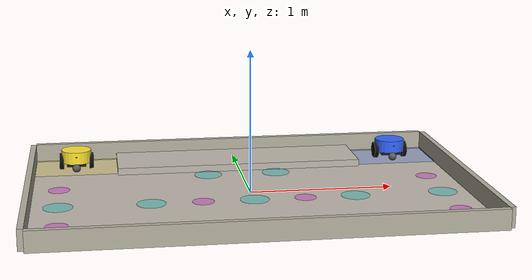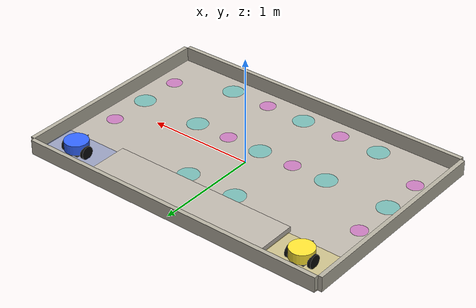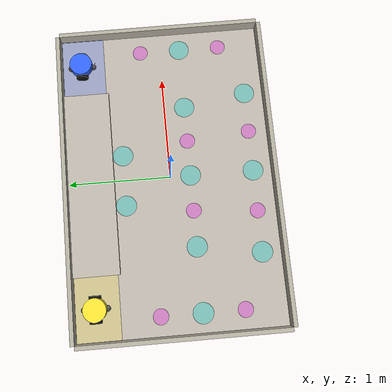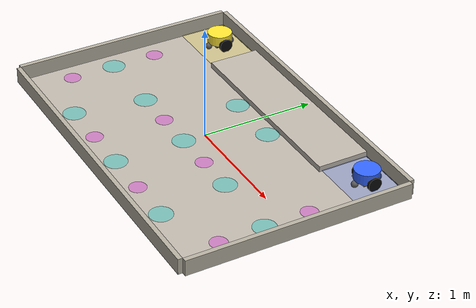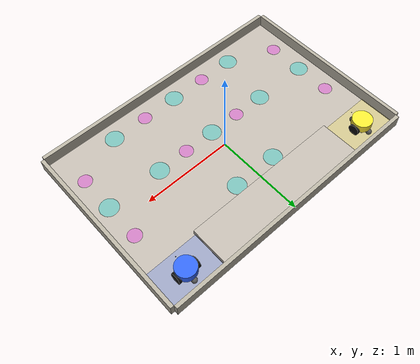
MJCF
<mujoco model="eurobot2026_table">
      <compiler angle="degree" coordinate="local"/>
      <option integrator="RK4" timestep="0.002" gravity="0 0 -9.81" cone="elliptic" jacobian="dense" iterations="80" tolerance="1e-6" impratio="4"/>

      <size nconmax="200" njmax="2000"/>

      <asset>
            <texture name="playmat_tex" type="2d" file="table.png"/>
            <material name="playmat_mat" texture="playmat_tex" rgba="1 1 1 1"/>

            <texture name="granary_tex" type="2d" file="granary_beta.png"/>
            <material name="granary_mat" texture="granary_tex" rgba="1 1 1 1"/>

            <material name="border_mat" rgba="0.71 0.69 0.63 1"/>
            <material name="matblue" rgba="0.2 0.4 1 1"/>
            <material name="matyellow" rgba="1 0.9 0.2 1"/>
      </asset>

      <default>
            <geom friction="1.0 0.01 0.002" solimp="0.9 0.95 0.001" solref="0.004 1"/>
            <joint damping="0.10" armature="0.003"/>
            <velocity kv="20" ctrllimited="true" ctrlrange="-10 10" forcerange="-2 2"/>
      </default>

      <worldbody>
            <light diffuse=".2 .2 .2" pos="0 0 10" dir="0 0 -1"/>

            <!-- Table -->
            <geom name="table_top" type="box" pos="0 0 0" size="1.500 1.000 0.005" priority="2" material="playmat_mat" contype="1" conaffinity="1" friction="1 0.005 0.0001"/>

            <geom name="wall_north" type="box" pos=" 1.520 0.000 0.070" size="0.020 1.000 0.070" material="border_mat" contype="1" conaffinity="1" friction="0.20 0.002 0.00005" solref="0.002 1" solimp="0.95 0.99 0.001"/>
            <geom name="wall_south" type="box" pos="-1.520 0.000 0.070" size="0.020 1.000 0.070" material="border_mat" contype="1" conaffinity="1" friction="0.20 0.002 0.00005" solref="0.002 1" solimp="0.95 0.99 0.001"/>
            <geom name="wall_east" type="box" pos="0.000  1.020 0.070" size="1.500 0.020 0.070" material="border_mat" contype="1" conaffinity="1" friction="0.20 0.002 0.00005" solref="0.002 1" solimp="0.95 0.99 0.001"/>
            <geom name="wall_west" type="box" pos="0.000 -1.020 0.070" size="1.500 0.020 0.070" material="border_mat" contype="1" conaffinity="1" friction="0.20 0.002 0.00005" solref="0.002 1" solimp="0.95 0.99 0.001"/>

            <!-- Granary -->
            <geom name="granary" type="box" pos="0.0 0.775 0.027500" size="0.900000 0.225000 0.027500" material="granary_mat" contype="1" conaffinity="1"/>

            <!-- Blue robot -->
            <body name="blue_base" pos="1.20 0.8 0.12" euler="0 0 -90">
                  <freejoint name="blue_base_free"/>

                  <geom name="blue_chassis" type="cylinder" pos="0 0 -0.02" size="0.11 0.045" density="300" material="matblue" contype="1" conaffinity="1"/>

                  <geom name="blue_ballast" type="box" pos="0 0 -0.08" size="0.07 0.07 0.01" density="2000" rgba="0.1 0.1 0.1 1" contype="0" conaffinity="0"/>

                  <geom name="blue_caster_front" type="sphere" pos="0.11 0 -0.09" size="0.03" rgba="0.35 0.35 0.35 1" friction="0.002 0.00005 0.0001"/>
                  <geom name="blue_caster_back" type="sphere" pos="-0.11 0 -0.09" size="0.03" rgba="0.35 0.35 0.35 1" friction="0.002 0.00005 0.0001"/>

                  <body name="blue_left_wheel" pos="0  0.11 -0.06">
                        <joint name="blue_left_wheel_joint" type="hinge" axis="0 1 0" frictionloss="0.02"/>
                        <geom name="blue_left_tire" type="cylinder" fromto="0 -0.015 0   0 0.015 0" size="0.06" density="500" rgba="0.05 0.05 0.05 1" friction="1.2 0.01 0.002" condim="4"/>
                  </body>

                  <body name="blue_right_wheel" pos="0 -0.11 -0.06">
                        <joint name="blue_right_wheel_joint" type="hinge" axis="0 1 0" frictionloss="0.02"/>
                        <geom name="blue_right_tire" type="cylinder" fromto="0 -0.015 0   0 0.015 0" size="0.06" density="500" rgba="0.05 0.05 0.05 1" friction="1.2 0.01 0.002" condim="4"/>
                  </body>

                  <site name="blue_grip" type="sphere" size="0.005" pos="0.14 0 0"/>
            </body>

            <!-- Yellow robot (smaller) -->
            <body name="yellow_base" pos="-1.20 0.8 0.12" euler="0 0 -90">
                  <freejoint name="yellow_base_free"/>

                  <geom name="yellow_chassis" type="cylinder" pos="0 0 -0.02" size="0.11 0.045" density="300" material="matyellow" contype="1" conaffinity="1"/>

                  <geom name="yellow_ballast" type="box" pos="0 0 -0.08" size="0.07 0.07 0.01" density="2000" rgba="0.1 0.1 0.1 1" contype="0" conaffinity="0"/>

                  <geom name="yellow_caster_front" type="sphere" pos="0.11 0 -0.09" size="0.03" rgba="0.35 0.35 0.35 1" friction="0.002 0.00005 0.0001"/>
                  <geom name="yellow_caster_back" type="sphere" pos="-0.11 0 -0.09" size="0.03" rgba="0.35 0.35 0.35 1" friction="0.002 0.00005 0.0001"/>

                  <body name="yellow_left_wheel" pos="0  0.11 -0.06">
                        <joint name="yellow_left_wheel_joint" type="hinge" axis="0 1 0" frictionloss="0.02"/>
                        <geom name="yellow_left_tire" type="cylinder" fromto="0 -0.015 0   0 0.015 0" size="0.06" density="500" rgba="0.05 0.05 0.05 1" friction="1.2 0.01 0.002" condim="4"/>
                  </body>

                  <body name="yellow_right_wheel" pos="0 -0.11 -0.06">
                        <joint name="yellow_right_wheel_joint" type="hinge" axis="0 1 0" frictionloss="0.02"/>
                        <geom name="yellow_right_tire" type="cylinder" fromto="0 -0.015 0   0 0.015 0" size="0.06" density="500" rgba="0.05 0.05 0.05 1" friction="1.2 0.01 0.002" condim="4"/>
                  </body>

                  <site name="yellow_grip" type="sphere" size="0.005" pos="0.14 0 0"/>
            </body>

            <!-- Pantry and pickup visuals (moved inward from rails) -->
            <body name="markers">
                  <!-- Pantries -->
                  <geom name="pantry_A" type="cylinder" pos="-0.25  0.45 0.011" size="0.10 0.001" rgba="0.0 0.8 0.8 0.35" contype="0" conaffinity="0"/>
                  <geom name="pantry_B" type="cylinder" pos=" 0.25  0.45 0.011" size="0.10 0.001" rgba="0.0 0.8 0.8 0.35" contype="0" conaffinity="0"/>
                  <geom name="pantry_C" type="cylinder" pos="-1.32 -0.20 0.011" size="0.10 0.001" rgba="0.0 0.8 0.8 0.35" contype="0" conaffinity="0"/>
                  <geom name="pantry_D" type="cylinder" pos="-0.70 -0.20 0.011" size="0.10 0.001" rgba="0.0 0.8 0.8 0.35" contype="0" conaffinity="0"/>
                  <geom name="pantry_E" type="cylinder" pos=" 0.00 -0.20 0.011" size="0.10 0.001" rgba="0.0 0.8 0.8 0.35" contype="0" conaffinity="0"/>
                  <geom name="pantry_F" type="cylinder" pos=" 0.70 -0.20 0.011" size="0.10 0.001" rgba="0.0 0.8 0.8 0.35" contype="0" conaffinity="0"/>
                  <geom name="pantry_G" type="cylinder" pos=" 1.32 -0.20 0.011" size="0.10 0.001" rgba="0.0 0.8 0.8 0.35" contype="0" conaffinity="0"/>
                  <geom name="pantry_H" type="cylinder" pos="-0.80 -0.82 0.011" size="0.10 0.001" rgba="0.0 0.8 0.8 0.35" contype="0" conaffinity="0"/>
                  <geom name="pantry_I" type="cylinder" pos=" 0.00 -0.82 0.011" size="0.10 0.001" rgba="0.0 0.8 0.8 0.35" contype="0" conaffinity="0"/>
                  <geom name="pantry_J" type="cylinder" pos=" 0.80 -0.82 0.011" size="0.10 0.001" rgba="0.0 0.8 0.8 0.35" contype="0" conaffinity="0"/>

                  <!-- Pickups -->
                  <geom name="pickup_P1" type="cylinder" pos="-1.32  0.20 0.011" size="0.075 0.001" rgba="0.9 0.1 0.9 0.35" contype="0" conaffinity="0"/>
                  <geom name="pickup_P2" type="cylinder" pos=" 1.32  0.20 0.011" size="0.075 0.001" rgba="0.9 0.1 0.9 0.35" contype="0" conaffinity="0"/>
                  <geom name="pickup_P3" type="cylinder" pos="-0.35 -0.20 0.011" size="0.075 0.001" rgba="0.9 0.1 0.9 0.35" contype="0" conaffinity="0"/>
                  <geom name="pickup_P4" type="cylinder" pos=" 0.35 -0.20 0.011" size="0.075 0.001" rgba="0.9 0.1 0.9 0.35" contype="0" conaffinity="0"/>
                  <geom name="pickup_P5" type="cylinder" pos="-1.32 -0.60 0.011" size="0.075 0.001" rgba="0.9 0.1 0.9 0.35" contype="0" conaffinity="0"/>
                  <geom name="pickup_P6" type="cylinder" pos=" 1.32 -0.60 0.011" size="0.075 0.001" rgba="0.9 0.1 0.9 0.35" contype="0" conaffinity="0"/>
                  <geom name="pickup_P7" type="cylinder" pos="-0.40 -0.82 0.011" size="0.075 0.001" rgba="0.9 0.1 0.9 0.35" contype="0" conaffinity="0"/>
                  <geom name="pickup_P8" type="cylinder" pos=" 0.40 -0.82 0.011" size="0.075 0.001" rgba="0.9 0.1 0.9 0.35" contype="0" conaffinity="0"/>
            </body>

            <!-- Nest visuals -->
            <site name="nest_blue_fill" type="box" pos=" 1.2  0.8 0.011" size="0.300 0.225 0.001" rgba="0.20 0.40 1.00 0.25"/>
            <site name="nest_yellow_fill" type="box" pos="-1.2  0.8 0.011" size="0.300 0.225 0.001" rgba="1.00 0.90 0.20 0.25"/>
      </worldbody>

      <actuator>
            <!-- Blue -->
            <velocity name="blue_left_speed" joint="blue_left_wheel_joint" kv="40" ctrlrange="-20 20" forcerange="-8 8"/>
            <velocity name="blue_right_speed" joint="blue_right_wheel_joint" kv="40" ctrlrange="-20 20" forcerange="-8 8"/>

            <!-- Yellow -->
            <velocity name="yellow_left_speed" joint="yellow_left_wheel_joint" kv="40" ctrlrange="-20 20" forcerange="-8 8"/>
            <velocity name="yellow_right_speed" joint="yellow_right_wheel_joint" kv="40" ctrlrange="-20 20" forcerange="-8 8"/>
      </actuator>

</mujoco>
